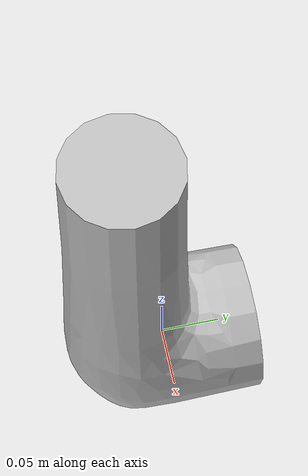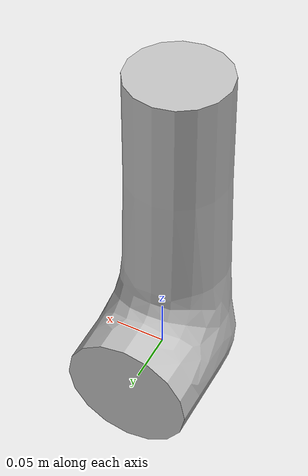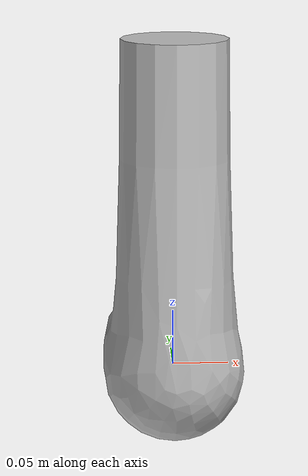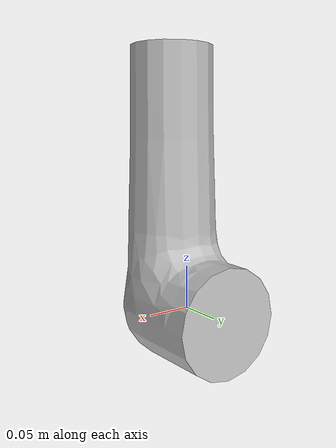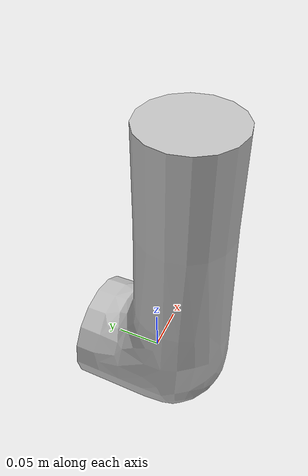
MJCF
<mujoco model="J3">
  <default>
    <default class="visual">
      <geom group="2" type="mesh" contype="0" conaffinity="0"/>
    </default>
    <default class="collision">
      <geom group="3" type="mesh"/>
    </default>
  </default>
  <asset>
    <material name="material_m3_0" specular="0.20000000000000004" shininess="1.0" rgba="0.75294118 0.75294118 0.75294118 1.0"/>
    <mesh file="J3.obj"/>
  </asset>
  <worldbody>
    <body name="J3">
      <geom material="material_m3_0" mesh="J3" class="visual"/>
      <geom mesh="J3" class="collision"/>
    </body>
  </worldbody>
</mujoco>
